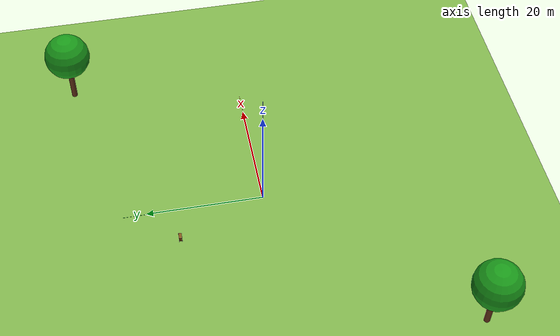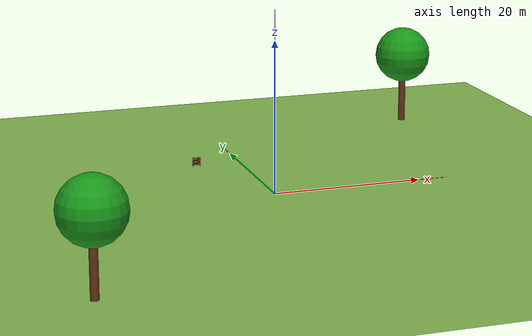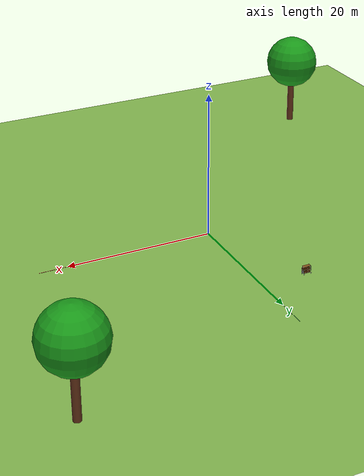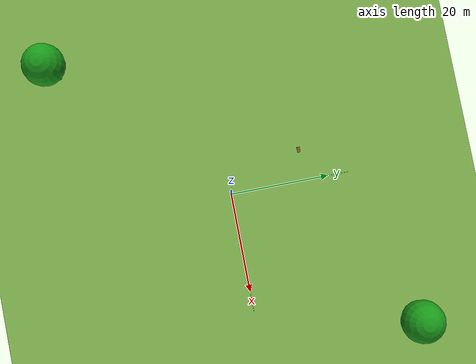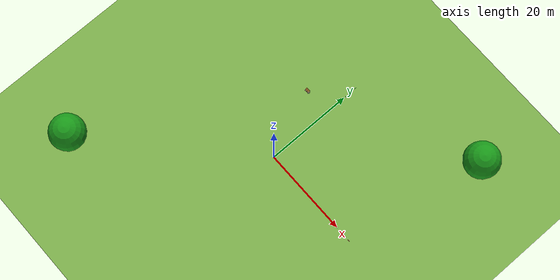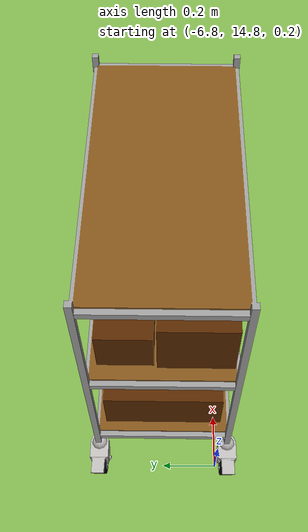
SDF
<sdf version="1.10">
 <world name="warehouse_outdoor">
  <gravity>0 0 -9.8000000000000007</gravity>
  <physics type="ode">
   <max_step_size>0.004</max_step_size>
   <real_time_factor>1.0</real_time_factor>
   <real_time_update_rate>250</real_time_update_rate>
  </physics>
  <scene>
   <ambient>0.8 0.8 0.8 1</ambient>
   <background>0.6 0.8 1.0 1</background>
   <shadows>true</shadows>
   <grid>false</grid>
  </scene>
  <magnetic_field>6e-06 2.3e-05 -4.2e-05</magnetic_field>
  <atmosphere type="adiabatic"/>
  <spherical_coordinates>
   <surface_model>EARTH_WGS84</surface_model>
   <world_frame_orientation>ENU</world_frame_orientation>
   <latitude_deg>10.772175109674038</latitude_deg>
   <longitude_deg>106.65789107082472</longitude_deg>
   <elevation>0</elevation>
  </spherical_coordinates>
  <model name="ground_plane">
   <static>true</static>
   <link name="link">
    <collision name="collision">
     <geometry><plane><normal>0 0 1</normal><size>200 200</size></plane></geometry>
    </collision>
    <visual name="visual">
     <geometry><plane><normal>0 0 1</normal><size>200 200</size></plane></geometry>
     <material>
      <ambient>0.5 0.7 0.3 1</ambient>
      <diffuse>0.5 0.7 0.3 1</diffuse>
      <specular>0 0 0 1</specular>
     </material>
    </visual>
    <inertial>
     <mass>1</mass>
     <inertia><ixx>1</ixx><ixy>0</ixy><ixz>0</ixz><iyy>1</iyy><iyz>0</iyz><izz>1</izz></inertia>
    </inertial>
   </link>
  </model>
  <include>
   <uri>https://fuel.ignitionrobotics.org/1.0/MovAi/models/cart_model_2</uri>
   <name>cart1</name>
   <pose>-5.7300000000000004 15 0.25 0 0 0</pose>
  </include>
  <light name="sun" type="directional">
   <pose>0 0 50 0 0 0</pose>
   <intensity>1.2</intensity>
   <direction>0 0 -1</direction>
   <diffuse>1 1 1 1</diffuse>
   <specular>0.8 0.8 0.8 1</specular>
   <attenuation><range>1000</range><linear>0</linear><constant>1</constant><quadratic>0</quadratic></attenuation>
  </light>
  <model name="tree_1">
   <static>true</static>
   <pose>-30 -30 0 0 0 0</pose>
   <link name="link">
    <visual name="trunk">
     <geometry><cylinder><radius>0.5</radius><length>8</length></cylinder></geometry>
     <material><ambient>0.4 0.2 0.1 1</ambient><diffuse>0.4 0.2 0.1 1</diffuse></material>
     <pose>0 0 4 0 0 0</pose>
    </visual>
    <visual name="leaves">
     <geometry><sphere><radius>4</radius></sphere></geometry>
     <material><ambient>0.1 0.6 0.1 1</ambient><diffuse>0.1 0.6 0.1 1</diffuse></material>
     <pose>0 0 10 0 0 0</pose>
    </visual>
    <collision name="trunk_collision">
     <geometry><cylinder><radius>0.5</radius><length>8</length></cylinder></geometry>
     <pose>0 0 4 0 0 0</pose>
    </collision>
   </link>
  </model>
  <model name="tree_2">
   <static>true</static>
   <pose>30 30 0 0 0 0</pose>
   <link name="link">
    <visual name="trunk">
     <geometry><cylinder><radius>0.5</radius><length>8</length></cylinder></geometry>
     <material><ambient>0.4 0.2 0.1 1</ambient><diffuse>0.4 0.2 0.1 1</diffuse></material>
     <pose>0 0 4 0 0 0</pose>
    </visual>
    <visual name="leaves">
     <geometry><sphere><radius>4</radius></sphere></geometry>
     <material><ambient>0.1 0.6 0.1 1</ambient><diffuse>0.1 0.6 0.1 1</diffuse></material>
     <pose>0 0 10 0 0 0</pose>
    </visual>
    <collision name="trunk_collision">
     <geometry><cylinder><radius>0.5</radius><length>8</length></cylinder></geometry>
     <pose>0 0 4 0 0 0</pose>
    </collision>
   </link>
  </model>
  <model name="origin_marker">
   <static>true</static>
   <link name="link">
    <visual name="marker">
     <geometry><sphere><radius>0.05</radius></sphere></geometry>
     <material><ambient>1 0 1 1</ambient><diffuse>1 0 1 1</diffuse></material>
    </visual>
    <visual name="x_axis">
     <geometry><cylinder><radius>0.02</radius><length>24</length></cylinder></geometry>
     <material>
      <script><uri>file://media/materials/scripts/gazebo.material</uri><name>Gazebo/Red</name></script>
     </material>
     <pose>12 0 0 0 -1.5708 0</pose>
    </visual>
    <visual name="y_axis">
     <geometry><cylinder><radius>0.02</radius><length>24</length></cylinder></geometry>
     <material>
      <script><uri>file://media/materials/scripts/gazebo.material</uri><name>Gazebo/Green</name></script>
     </material>
     <pose>0 12 0 -1.5708 0 0</pose>
    </visual>
    <visual name="z_axis">
     <geometry><cylinder><radius>0.02</radius><length>24</length></cylinder></geometry>
     <material>
      <script><uri>file://media/materials/scripts/gazebo.material</uri><name>Gazebo/Blue</name></script>
     </material>
     <pose>0 0 12 0 0 0</pose>
    </visual>
   </link>
  </model>
 </world>
</sdf>

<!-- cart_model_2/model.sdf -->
<sdf version="1.7">
    <model name="cart_model2">
        <pose>0 0 0 0 0 0</pose>
        <!-- BASE_LINK FRAME -->
        <link name="base_link">
            <pose>0 0 0 0 0 -1.57079632679</pose>
            <inertial>
                <pose>0 -0.5 0.5 0 0 0</pose>
                <mass>30</mass>
                <inertia>
                    <ixx>0.1</ixx>
                    <ixy>0</ixy>
                    <ixz>0</ixz>
                    <iyy>0.1</iyy>
                    <iyz>0</iyz>
                    <izz>0.1</izz>
                </inertia>
            </inertial>
            <collision name="base_link_collision">
                <pose>0 0 0 0 0 0</pose>
                <geometry>
                    <mesh>
                        <scale>1 1 1</scale>
                        <uri>meshes/cart_base_collision.stl</uri>
                    </mesh>
                </geometry>
                <max_contacts>5</max_contacts>
                <surface>
                    <contact>
                        <ode>
                            <soft_cfm>1.0</soft_cfm>
                            <soft_erp>0.4</soft_erp>
                            <kp>1000000.0</kp>
                            <kd>1</kd>
                            <min_depth>0.01</min_depth>
                        </ode>
                    </contact>
                    <friction>
                        <ode>
                            <mu>1.16</mu>
                            <mu2>1.16</mu2>
                        </ode>
                    </friction>
                </surface>
            </collision>
            <visual name="base_link_visual">
                <pose>0 0 0 0 0 0</pose>
                <geometry>
                    <mesh>
                        <scale>1 1 1</scale>
                        <uri>meshes/cart_base.dae</uri>
                        <submesh>
                            <name>base_metal</name>
                            <center>false</center>
                        </submesh>
                    </mesh>
                </geometry>
            </visual>
            <visual name="base_shelf_visual">
                <pose>0 0 0 0 0 0</pose>
                <geometry>
                    <mesh>
                        <scale>1 1 1</scale>
                        <uri>meshes/cart_base.dae</uri>
                        <submesh>
                            <name>base_shelf</name>
                            <center>false</center>
                        </submesh>
                    </mesh>
                </geometry>
            </visual>
            <visual name="back_left_sup_visual">
                <pose>-0.245 -1.005 0.05 0 0 0</pose>
                <geometry>
                    <mesh>
                        <scale>1 1 1</scale>
                        <uri>meshes/sup_wheels.dae</uri>
                    </mesh>
                </geometry>
            </visual>
            <visual name="back_right_sup_visual">
                <pose>0.245 -1.005 0.05 0 0 0</pose>
                <geometry>
                    <mesh>
                        <scale>1 1 1</scale>
                        <uri>meshes/sup_wheels.dae</uri>
                    </mesh>
                </geometry>
            </visual>
            <visual name="tag_visual">
                <pose>0 0 0 0 0 0</pose>
                <geometry>
                    <mesh>
                        <scale>1 1 1</scale>
                        <uri>meshes/cart_base.dae</uri>
                        <submesh>
                            <name>tag</name>
                            <center>false</center>
                        </submesh>
                    </mesh>
                </geometry>
                <material>
                    <diffuse>1.0 1.0 1.0</diffuse>
                    <specular>1.0 1.0 1.0</specular>
                    <pbr>
                        <metal>
                            <albedo_map>meshes/cart_tag.png</albedo_map>
                        </metal>
                    </pbr>
                </material>
            </visual>
        </link>
        <!-- Wheels -->
        <!-- Back Left -->
        <link name="back_left">
            <pose>-1.04 -0.245 -0.05 0 0 1.570796327</pose>
            <inertial>
                <pose>0 0 0 0 1.570796327 0</pose>
                <mass>0.01</mass>
                <inertia>
                    <ixx>0.0000175</ixx>
                    <ixy>0</ixy>
                    <ixz>0</ixz>
                    <iyy>0.0000175</iyy>
                    <iyz>0</iyz>
                    <izz>0.00003125</izz>
                </inertia>
            </inertial>
            <collision name="back_left_collision">
                <pose>0 0 0 0 1.570796327 0</pose>
                <geometry>
                    <cylinder>
                        <length>0.03</length>
                        <radius>0.06</radius>
                    </cylinder>
                </geometry>
                <max_contacts>5</max_contacts>
                <surface>
                    <contact>
                        <ode>
                            <soft_cfm>1.0</soft_cfm>
                            <soft_erp>0.4</soft_erp>
                            <kp>1000000.0</kp>
                            <kd>1</kd>
                            <min_depth>0.01</min_depth>
                        </ode>
                    </contact>
                    <friction>
                        <ode>
                            <mu>1.16</mu>
                            <mu2>1.16</mu2>
                        </ode>
                    </friction>
                </surface>
            </collision>
            <visual name="back_left_visual">
                <pose>0 0 0 0 0 0</pose>
                <geometry>
                    <mesh>
                        <scale>1 1 1</scale>
                        <uri>meshes/wheel.dae</uri>
                    </mesh>
                </geometry>
            </visual>
        </link>
        <joint name="back_left_joint" type="revolute">
            <child>back_left</child>
            <parent>base_link</parent>
            <axis>
                <xyz>1 0 0</xyz>
                <dynamics>
                    <friction>0.5</friction>
                    <damping>0.0001</damping>
                </dynamics>
            </axis>
        </joint>
        <!-- Back Right -->
        <link name="back_right">
            <pose>-1.04 0.245 -0.05 0 0 1.570796327</pose>
            <inertial>
                <pose>0 0 0 0 1.570796327 0</pose>
                <mass>0.01</mass>
                <inertia>
                    <ixx>0.0000175</ixx>
                    <ixy>0</ixy>
                    <ixz>0</ixz>
                    <iyy>0.0000175</iyy>
                    <iyz>0</iyz>
                    <izz>0.00003125</izz>
                </inertia>
            </inertial>
            <collision name="back_right_collision">
                <pose>0 0 0 0 1.570796327 0</pose>
                <geometry>
                    <cylinder>
                        <length>0.03</length>
                        <radius>0.06</radius>
                    </cylinder>
                </geometry>
                <max_contacts>5</max_contacts>
                <surface>
                    <contact>
                        <ode>
                            <soft_cfm>1.0</soft_cfm>
                            <soft_erp>0.4</soft_erp>
                            <kp>1000000.0</kp>
                            <kd>1</kd>
                            <min_depth>0.01</min_depth>
                        </ode>
                    </contact>
                    <friction>
                        <ode>
                            <mu>1.16</mu>
                            <mu2>1.16</mu2>
                        </ode>
                    </friction>
                </surface>
            </collision>
            <visual name="back_right_visual">
                <pose>0 0 0 0 0 0</pose>
                <geometry>
                    <mesh>
                        <scale>1 1 1</scale>
                        <uri>meshes/wheel.dae</uri>
                    </mesh>
                </geometry>
            </visual>
        </link>
        <joint name="back_right_joint" type="revolute">
            <child>back_right</child>
            <parent>base_link</parent>
            <axis>
                <xyz>1 0 0</xyz>
                <dynamics>
                    <friction>0.5</friction>
                    <damping>0.0001</damping>
                </dynamics>
            </axis>
        </joint>
        <!-- Front Left -->
        <link name="wheel_sup_front_left">
            <pose>0 -0.245 0.05 0 0 1.570796327</pose>
            <inertial>
                <pose>0 0 0 0 0 0</pose>
                <mass>0.01</mass>
                <inertia>
                    <ixx>0.0000175</ixx>
                    <ixy>0</ixy>
                    <ixz>0</ixz>
                    <iyy>0.0000175</iyy>
                    <iyz>0</iyz>
                    <izz>0.0000175</izz>
                </inertia>
            </inertial>
            <visual name="wheel_sup_front_left_visual">
                <pose>0 0 0 0 0 3.14159265359</pose>
                <geometry>
                    <mesh>
                        <scale>1 1 1</scale>
                        <uri>meshes/sup_wheels.dae</uri>
                    </mesh>
                </geometry>
            </visual>
        </link>
        <joint name="wheel_sup_front_left_joint" type="revolute">
            <child>wheel_sup_front_left</child>
            <parent>base_link</parent>
            <axis>
                <xyz>0 0 1</xyz>
                <dynamics>
                    <damping>0.001</damping>
                </dynamics>
            </axis>
        </joint>
        <link name="front_left">
            <pose>-0.04 -0.245 -0.05 0 0 1.570796327</pose>
            <inertial>
                <pose>0 0 0 0 1.570796327 0</pose>
                <mass>0.01</mass>
                <inertia>
                    <ixx>0.0000175</ixx>
                    <ixy>0</ixy>
                    <ixz>0</ixz>
                    <iyy>0.0000175</iyy>
                    <iyz>0</iyz>
                    <izz>0.00003125</izz>
                </inertia>
            </inertial>
            <collision name="front_left_collision">
                <pose>0 0 0 0 1.570796327 0</pose>
                <geometry>
                    <cylinder>
                        <length>0.03</length>
                        <radius>0.06</radius>
                    </cylinder>
                </geometry>
                <max_contacts>5</max_contacts>
                <surface>
                    <contact>
                        <ode>
                            <soft_cfm>1.0</soft_cfm>
                            <soft_erp>0.4</soft_erp>
                            <kp>1000000.0</kp>
                            <kd>1</kd>
                            <min_depth>0.01</min_depth>
                        </ode>
                    </contact>
                    <friction>
                        <ode>
                            <mu>1.16</mu>
                            <mu2>1.16</mu2>
                        </ode>
                    </friction>
                </surface>
            </collision>
            <visual name="front_left_visual">
                <pose>0 0 0 0 0 0</pose>
                <geometry>
                    <mesh>
                        <scale>1 1 1</scale>
                        <uri>meshes/wheel.dae</uri>
                    </mesh>
                </geometry>
            </visual>
        </link>
        <joint name="front_left_joint" type="revolute">
            <child>front_left</child>
            <parent>wheel_sup_front_left</parent>
            <axis>
                <xyz>1 0 0</xyz>
                <dynamics>
                    <friction>0.5</friction>
                    <damping>0.0001</damping>
                </dynamics>
            </axis>
        </joint>
        <!-- Front Right -->
        <link name="wheel_sup_front_right">
            <pose>0 0.245 0.05 0 0 1.570796327</pose>
            <inertial>
                <pose>0 0 0 0 0 0</pose>
                <mass>0.01</mass>
                <inertia>
                    <ixx>0.0000175</ixx>
                    <ixy>0</ixy>
                    <ixz>0</ixz>
                    <iyy>0.0000175</iyy>
                    <iyz>0</iyz>
                    <izz>0.0000175</izz>
                </inertia>
            </inertial>
            <visual name="wheel_sup_front_right_visual">
                <pose>0 0 0 0 0 3.14159265359</pose>
                <geometry>
                    <mesh>
                        <scale>1 1 1</scale>
                        <uri>meshes/sup_wheels.dae</uri>
                    </mesh>
                </geometry>
            </visual>
        </link>
        <joint name="wheel_sup_front_right_joint" type="revolute">
            <child>wheel_sup_front_right</child>
            <parent>base_link</parent>
            <axis>
                <xyz>0 0 1</xyz>
                <dynamics>
                    <damping>0.001</damping>
                </dynamics>
            </axis>
        </joint>
        <link name="front_right">
            <pose>-0.04 0.245 -0.05 0 0 1.570796327</pose>
            <inertial>
                <pose>0 0 0 0 1.570796327 0</pose>
                <mass>0.01</mass>
                <inertia>
                    <ixx>0.0000175</ixx>
                    <ixy>0</ixy>
                    <ixz>0</ixz>
                    <iyy>0.0000175</iyy>
                    <iyz>0</iyz>
                    <izz>0.00003125</izz>
                </inertia>
            </inertial>
            <collision name="front_right_collision">
                <pose>0 0 0 0 1.570796327 0</pose>
                <geometry>
                    <cylinder>
                        <length>0.03</length>
                        <radius>0.06</radius>
                    </cylinder>
                </geometry>
                <max_contacts>5</max_contacts>
                <surface>
                    <contact>
                        <ode>
                            <soft_cfm>1.0</soft_cfm>
                            <soft_erp>0.4</soft_erp>
                            <kp>1000000.0</kp>
                            <kd>1</kd>
                            <min_depth>0.01</min_depth>
                        </ode>
                    </contact>
                    <friction>
                        <ode>
                            <mu>1.16</mu>
                            <mu2>1.16</mu2>
                        </ode>
                    </friction>
                </surface>
            </collision>
            <visual name="front_right_visual">
                <pose>0 0 0 0 0 0</pose>
                <geometry>
                    <mesh>
                        <scale>1 1 1</scale>
                        <uri>meshes/wheel.dae</uri>
                    </mesh>
                </geometry>
            </visual>
        </link>
        <joint name="front_right_joint" type="revolute">
            <child>front_right</child>
            <parent>wheel_sup_front_right</parent>
            <axis>
                <xyz>1 0 0</xyz>
                <dynamics>
                    <friction>0.5</friction>
                    <damping>0.0001</damping>
                </dynamics>
            </axis>
        </joint>
    </model>
</sdf>
